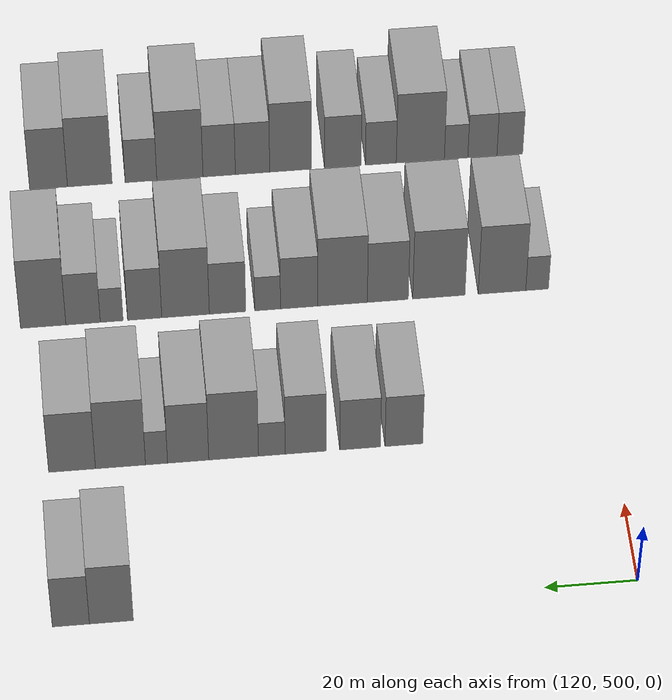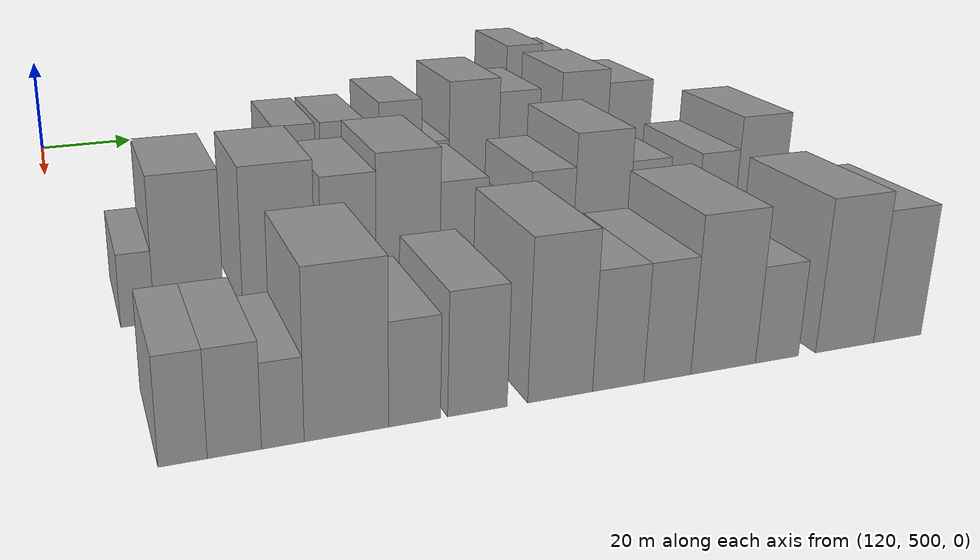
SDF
<sdf version="1.6">
 <world name="default">
  <model name="building_413">
   <static>1</static>
   <pose>130.0000 612.2391 0 0.000000 0.000000 0.000000</pose>
   <link name="link">
    <pose>0 0 10.50 0 0 0</pose>
    <collision name="collision"><geometry><box><size>20.0000 9.2866 21.0000</size></box></geometry></collision>
    <visual name="visual">
     <cast_shadows>0</cast_shadows>
     <geometry><box><size>20.0000 9.2866 21.0000</size></box></geometry>
     <material>
      <script>
       <uri>model://grey_wall/materials/scripts</uri>
       <uri>model://grey_wall/materials/textures</uri>
       <name>vrc/grey_wall</name>
      </script>
     </material>
    </visual>
   </link>
  </model>
  <model name="building_414">
   <static>1</static>
   <pose>130.0000 620.8093 0 0.000000 0.000000 0.000000</pose>
   <link name="link">
    <pose>0 0 9.00 0 0 0</pose>
    <collision name="collision"><geometry><box><size>20.0000 7.8538 18.0000</size></box></geometry></collision>
    <visual name="visual">
     <cast_shadows>0</cast_shadows>
     <geometry><box><size>20.0000 7.8538 18.0000</size></box></geometry>
     <material>
      <script>
       <uri>model://grey_wall/materials/scripts</uri>
       <uri>model://grey_wall/materials/textures</uri>
       <name>vrc/grey_wall</name>
      </script>
     </material>
    </visual>
   </link>
  </model>
  <model name="building_537">
   <static>1</static>
   <pose>170.0000 545.7697 0 0.000000 0.000000 0.000000</pose>
   <link name="link">
    <pose>0 0 9.00 0 0 0</pose>
    <collision name="collision"><geometry><box><size>20.0000 8.2819 18.0000</size></box></geometry></collision>
    <visual name="visual">
     <cast_shadows>0</cast_shadows>
     <geometry><box><size>20.0000 8.2819 18.0000</size></box></geometry>
     <material>
      <script>
       <uri>model://grey_wall/materials/scripts</uri>
       <uri>model://grey_wall/materials/textures</uri>
       <name>vrc/grey_wall</name>
      </script>
     </material>
    </visual>
   </link>
  </model>
  <model name="building_538">
   <static>1</static>
   <pose>170.0000 555.3766 0 0.000000 0.000000 0.000000</pose>
   <link name="link">
    <pose>0 0 9.00 0 0 0</pose>
    <collision name="collision"><geometry><box><size>20.0000 8.9319 18.0000</size></box></geometry></collision>
    <visual name="visual">
     <cast_shadows>0</cast_shadows>
     <geometry><box><size>20.0000 8.9319 18.0000</size></box></geometry>
     <material>
      <script>
       <uri>model://grey_wall/materials/scripts</uri>
       <uri>model://grey_wall/materials/textures</uri>
       <name>vrc/grey_wall</name>
      </script>
     </material>
    </visual>
   </link>
  </model>
  <model name="building_539">
   <static>1</static>
   <pose>170.0000 567.3300 0 0.000000 0.000000 0.000000</pose>
   <link name="link">
    <pose>0 0 10.50 0 0 0</pose>
    <collision name="collision"><geometry><box><size>20.0000 8.9748 21.0000</size></box></geometry></collision>
    <visual name="visual">
     <cast_shadows>0</cast_shadows>
     <geometry><box><size>20.0000 8.9748 21.0000</size></box></geometry>
     <material>
      <script>
       <uri>model://grey_wall/materials/scripts</uri>
       <uri>model://grey_wall/materials/textures</uri>
       <name>vrc/grey_wall</name>
      </script>
     </material>
    </visual>
   </link>
  </model>
  <model name="building_540">
   <static>1</static>
   <pose>170.0000 574.7303 0 0.000000 0.000000 0.000000</pose>
   <link name="link">
    <pose>0 0 6.00 0 0 0</pose>
    <collision name="collision"><geometry><box><size>20.0000 5.8257 12.0000</size></box></geometry></collision>
    <visual name="visual">
     <cast_shadows>0</cast_shadows>
     <geometry><box><size>20.0000 5.8257 12.0000</size></box></geometry>
     <material>
      <script>
       <uri>model://grey_wall/materials/scripts</uri>
       <uri>model://grey_wall/materials/textures</uri>
       <name>vrc/grey_wall</name>
      </script>
     </material>
    </visual>
   </link>
  </model>
  <model name="building_541">
   <static>1</static>
   <pose>170.0000 583.0833 0 0.000000 0.000000 0.000000</pose>
   <link name="link">
    <pose>0 0 12.00 0 0 0</pose>
    <collision name="collision"><geometry><box><size>20.0000 10.8804 24.0000</size></box></geometry></collision>
    <visual name="visual">
     <cast_shadows>0</cast_shadows>
     <geometry><box><size>20.0000 10.8804 24.0000</size></box></geometry>
     <material>
      <script>
       <uri>model://grey_wall/materials/scripts</uri>
       <uri>model://grey_wall/materials/textures</uri>
       <name>vrc/grey_wall</name>
      </script>
     </material>
    </visual>
   </link>
  </model>
  <model name="building_542">
   <static>1</static>
   <pose>170.0000 593.0234 0 0.000000 0.000000 0.000000</pose>
   <link name="link">
    <pose>0 0 10.50 0 0 0</pose>
    <collision name="collision"><geometry><box><size>20.0000 8.9997 21.0000</size></box></geometry></collision>
    <visual name="visual">
     <cast_shadows>0</cast_shadows>
     <geometry><box><size>20.0000 8.9997 21.0000</size></box></geometry>
     <material>
      <script>
       <uri>model://grey_wall/materials/scripts</uri>
       <uri>model://grey_wall/materials/textures</uri>
       <name>vrc/grey_wall</name>
      </script>
     </material>
    </visual>
   </link>
  </model>
  <model name="building_543">
   <static>1</static>
   <pose>170.0000 599.9318 0 0.000000 0.000000 0.000000</pose>
   <link name="link">
    <pose>0 0 6.00 0 0 0</pose>
    <collision name="collision"><geometry><box><size>20.0000 4.8172 12.0000</size></box></geometry></collision>
    <visual name="visual">
     <cast_shadows>0</cast_shadows>
     <geometry><box><size>20.0000 4.8172 12.0000</size></box></geometry>
     <material>
      <script>
       <uri>model://grey_wall/materials/scripts</uri>
       <uri>model://grey_wall/materials/textures</uri>
       <name>vrc/grey_wall</name>
      </script>
     </material>
    </visual>
   </link>
  </model>
  <model name="building_544">
   <static>1</static>
   <pose>170.0000 607.7904 0 0.000000 0.000000 0.000000</pose>
   <link name="link">
    <pose>0 0 12.00 0 0 0</pose>
    <collision name="collision"><geometry><box><size>20.0000 10.9000 24.0000</size></box></geometry></collision>
    <visual name="visual">
     <cast_shadows>0</cast_shadows>
     <geometry><box><size>20.0000 10.9000 24.0000</size></box></geometry>
     <material>
      <script>
       <uri>model://grey_wall/materials/scripts</uri>
       <uri>model://grey_wall/materials/textures</uri>
       <name>vrc/grey_wall</name>
      </script>
     </material>
    </visual>
   </link>
  </model>
  <model name="building_545">
   <static>1</static>
   <pose>170.0000 618.3335 0 0.000000 0.000000 0.000000</pose>
   <link name="link">
    <pose>0 0 10.50 0 0 0</pose>
    <collision name="collision"><geometry><box><size>20.0000 10.1862 21.0000</size></box></geometry></collision>
    <visual name="visual">
     <cast_shadows>0</cast_shadows>
     <geometry><box><size>20.0000 10.1862 21.0000</size></box></geometry>
     <material>
      <script>
       <uri>model://grey_wall/materials/scripts</uri>
       <uri>model://grey_wall/materials/textures</uri>
       <name>vrc/grey_wall</name>
      </script>
     </material>
    </visual>
   </link>
  </model>
  <model name="building_667">
   <static>1</static>
   <pose>210.0000 511.2175 0 0.000000 0.000000 0.000000</pose>
   <link name="link">
    <pose>0 0 6.00 0 0 0</pose>
    <collision name="collision"><geometry><box><size>20.0000 5.1535 12.0000</size></box></geometry></collision>
    <visual name="visual">
     <cast_shadows>0</cast_shadows>
     <geometry><box><size>20.0000 5.1535 12.0000</size></box></geometry>
     <material>
      <script>
       <uri>model://grey_wall/materials/scripts</uri>
       <uri>model://grey_wall/materials/textures</uri>
       <name>vrc/grey_wall</name>
      </script>
     </material>
    </visual>
   </link>
  </model>
  <model name="building_668">
   <static>1</static>
   <pose>210.0000 519.1886 0 0.000000 0.000000 0.000000</pose>
   <link name="link">
    <pose>0 0 12.00 0 0 0</pose>
    <collision name="collision"><geometry><box><size>20.0000 10.7886 24.0000</size></box></geometry></collision>
    <visual name="visual">
     <cast_shadows>0</cast_shadows>
     <geometry><box><size>20.0000 10.7886 24.0000</size></box></geometry>
     <material>
      <script>
       <uri>model://grey_wall/materials/scripts</uri>
       <uri>model://grey_wall/materials/textures</uri>
       <name>vrc/grey_wall</name>
      </script>
     </material>
    </visual>
   </link>
  </model>
  <model name="building_669">
   <static>1</static>
   <pose>210.0000 533.5049 0 0.000000 0.000000 0.000000</pose>
   <link name="link">
    <pose>0 0 12.00 0 0 0</pose>
    <collision name="collision"><geometry><box><size>20.0000 11.8440 24.0000</size></box></geometry></collision>
    <visual name="visual">
     <cast_shadows>0</cast_shadows>
     <geometry><box><size>20.0000 11.8440 24.0000</size></box></geometry>
     <material>
      <script>
       <uri>model://grey_wall/materials/scripts</uri>
       <uri>model://grey_wall/materials/textures</uri>
       <name>vrc/grey_wall</name>
      </script>
     </material>
    </visual>
   </link>
  </model>
  <model name="building_670">
   <static>1</static>
   <pose>210.0000 545.0594 0 0.000000 0.000000 0.000000</pose>
   <link name="link">
    <pose>0 0 10.50 0 0 0</pose>
    <collision name="collision"><geometry><box><size>20.0000 9.2650 21.0000</size></box></geometry></collision>
    <visual name="visual">
     <cast_shadows>0</cast_shadows>
     <geometry><box><size>20.0000 9.2650 21.0000</size></box></geometry>
     <material>
      <script>
       <uri>model://grey_wall/materials/scripts</uri>
       <uri>model://grey_wall/materials/textures</uri>
       <name>vrc/grey_wall</name>
      </script>
     </material>
    </visual>
   </link>
  </model>
  <model name="building_671">
   <static>1</static>
   <pose>210.0000 555.2672 0 0.000000 0.000000 0.000000</pose>
   <link name="link">
    <pose>0 0 12.00 0 0 0</pose>
    <collision name="collision"><geometry><box><size>20.0000 11.1507 24.0000</size></box></geometry></collision>
    <visual name="visual">
     <cast_shadows>0</cast_shadows>
     <geometry><box><size>20.0000 11.1507 24.0000</size></box></geometry>
     <material>
      <script>
       <uri>model://grey_wall/materials/scripts</uri>
       <uri>model://grey_wall/materials/textures</uri>
       <name>vrc/grey_wall</name>
      </script>
     </material>
    </visual>
   </link>
  </model>
  <model name="building_672">
   <static>1</static>
   <pose>210.0000 565.0670 0 0.000000 0.000000 0.000000</pose>
   <link name="link">
    <pose>0 0 9.00 0 0 0</pose>
    <collision name="collision"><geometry><box><size>20.0000 8.4488 18.0000</size></box></geometry></collision>
    <visual name="visual">
     <cast_shadows>0</cast_shadows>
     <geometry><box><size>20.0000 8.4488 18.0000</size></box></geometry>
     <material>
      <script>
       <uri>model://grey_wall/materials/scripts</uri>
       <uri>model://grey_wall/materials/textures</uri>
       <name>vrc/grey_wall</name>
      </script>
     </material>
    </visual>
   </link>
  </model>
  <model name="building_673">
   <static>1</static>
   <pose>210.0000 572.1894 0 0.000000 0.000000 0.000000</pose>
   <link name="link">
    <pose>0 0 6.00 0 0 0</pose>
    <collision name="collision"><geometry><box><size>20.0000 5.7960 12.0000</size></box></geometry></collision>
    <visual name="visual">
     <cast_shadows>0</cast_shadows>
     <geometry><box><size>20.0000 5.7960 12.0000</size></box></geometry>
     <material>
      <script>
       <uri>model://grey_wall/materials/scripts</uri>
       <uri>model://grey_wall/materials/textures</uri>
       <name>vrc/grey_wall</name>
      </script>
     </material>
    </visual>
   </link>
  </model>
  <model name="building_674">
   <static>1</static>
   <pose>210.0000 581.1921 0 0.000000 0.000000 0.000000</pose>
   <link name="link">
    <pose>0 0 9.00 0 0 0</pose>
    <collision name="collision"><geometry><box><size>20.0000 8.2096 18.0000</size></box></geometry></collision>
    <visual name="visual">
     <cast_shadows>0</cast_shadows>
     <geometry><box><size>20.0000 8.2096 18.0000</size></box></geometry>
     <material>
      <script>
       <uri>model://grey_wall/materials/scripts</uri>
       <uri>model://grey_wall/materials/textures</uri>
       <name>vrc/grey_wall</name>
      </script>
     </material>
    </visual>
   </link>
  </model>
  <model name="building_675">
   <static>1</static>
   <pose>210.0000 590.6491 0 0.000000 0.000000 0.000000</pose>
   <link name="link">
    <pose>0 0 12.00 0 0 0</pose>
    <collision name="collision"><geometry><box><size>20.0000 10.7043 24.0000</size></box></geometry></collision>
    <visual name="visual">
     <cast_shadows>0</cast_shadows>
     <geometry><box><size>20.0000 10.7043 24.0000</size></box></geometry>
     <material>
      <script>
       <uri>model://grey_wall/materials/scripts</uri>
       <uri>model://grey_wall/materials/textures</uri>
       <name>vrc/grey_wall</name>
      </script>
     </material>
    </visual>
   </link>
  </model>
  <model name="building_676">
   <static>1</static>
   <pose>210.0000 599.8379 0 0.000000 0.000000 0.000000</pose>
   <link name="link">
    <pose>0 0 9.00 0 0 0</pose>
    <collision name="collision"><geometry><box><size>20.0000 7.6733 18.0000</size></box></geometry></collision>
    <visual name="visual">
     <cast_shadows>0</cast_shadows>
     <geometry><box><size>20.0000 7.6733 18.0000</size></box></geometry>
     <material>
      <script>
       <uri>model://grey_wall/materials/scripts</uri>
       <uri>model://grey_wall/materials/textures</uri>
       <name>vrc/grey_wall</name>
      </script>
     </material>
    </visual>
   </link>
  </model>
  <model name="building_677">
   <static>1</static>
   <pose>210.0000 607.2343 0 0.000000 0.000000 0.000000</pose>
   <link name="link">
    <pose>0 0 6.00 0 0 0</pose>
    <collision name="collision"><geometry><box><size>20.0000 5.1196 12.0000</size></box></geometry></collision>
    <visual name="visual">
     <cast_shadows>0</cast_shadows>
     <geometry><box><size>20.0000 5.1196 12.0000</size></box></geometry>
     <material>
      <script>
       <uri>model://grey_wall/materials/scripts</uri>
       <uri>model://grey_wall/materials/textures</uri>
       <name>vrc/grey_wall</name>
      </script>
     </material>
    </visual>
   </link>
  </model>
  <model name="building_678">
   <static>1</static>
   <pose>210.0000 613.6526 0 0.000000 0.000000 0.000000</pose>
   <link name="link">
    <pose>0 0 9.00 0 0 0</pose>
    <collision name="collision"><geometry><box><size>20.0000 7.7169 18.0000</size></box></geometry></collision>
    <visual name="visual">
     <cast_shadows>0</cast_shadows>
     <geometry><box><size>20.0000 7.7169 18.0000</size></box></geometry>
     <material>
      <script>
       <uri>model://grey_wall/materials/scripts</uri>
       <uri>model://grey_wall/materials/textures</uri>
       <name>vrc/grey_wall</name>
      </script>
     </material>
    </visual>
   </link>
  </model>
  <model name="building_679">
   <static>1</static>
   <pose>210.0000 622.5830 0 0.000000 0.000000 0.000000</pose>
   <link name="link">
    <pose>0 0 12.00 0 0 0</pose>
    <collision name="collision"><geometry><box><size>20.0000 10.1439 24.0000</size></box></geometry></collision>
    <visual name="visual">
     <cast_shadows>0</cast_shadows>
     <geometry><box><size>20.0000 10.1439 24.0000</size></box></geometry>
     <material>
      <script>
       <uri>model://grey_wall/materials/scripts</uri>
       <uri>model://grey_wall/materials/textures</uri>
       <name>vrc/grey_wall</name>
      </script>
     </material>
    </visual>
   </link>
  </model>
  <model name="building_806">
   <static>1</static>
   <pose>250.0000 512.3992 0 0.000000 0.000000 0.000000</pose>
   <link name="link">
    <pose>0 0 7.50 0 0 0</pose>
    <collision name="collision"><geometry><box><size>20.0000 6.0033 15.0000</size></box></geometry></collision>
    <visual name="visual">
     <cast_shadows>0</cast_shadows>
     <geometry><box><size>20.0000 6.0033 15.0000</size></box></geometry>
     <material>
      <script>
       <uri>model://grey_wall/materials/scripts</uri>
       <uri>model://grey_wall/materials/textures</uri>
       <name>vrc/grey_wall</name>
      </script>
     </material>
    </visual>
   </link>
  </model>
  <model name="building_807">
   <static>1</static>
   <pose>250.0000 518.7939 0 0.000000 0.000000 0.000000</pose>
   <link name="link">
    <pose>0 0 7.50 0 0 0</pose>
    <collision name="collision"><geometry><box><size>20.0000 6.7862 15.0000</size></box></geometry></collision>
    <visual name="visual">
     <cast_shadows>0</cast_shadows>
     <geometry><box><size>20.0000 6.7862 15.0000</size></box></geometry>
     <material>
      <script>
       <uri>model://grey_wall/materials/scripts</uri>
       <uri>model://grey_wall/materials/textures</uri>
       <name>vrc/grey_wall</name>
      </script>
     </material>
    </visual>
   </link>
  </model>
  <model name="building_808">
   <static>1</static>
   <pose>250.0000 524.9253 0 0.000000 0.000000 0.000000</pose>
   <link name="link">
    <pose>0 0 6.00 0 0 0</pose>
    <collision name="collision"><geometry><box><size>20.0000 5.4765 12.0000</size></box></geometry></collision>
    <visual name="visual">
     <cast_shadows>0</cast_shadows>
     <geometry><box><size>20.0000 5.4765 12.0000</size></box></geometry>
     <material>
      <script>
       <uri>model://grey_wall/materials/scripts</uri>
       <uri>model://grey_wall/materials/textures</uri>
       <name>vrc/grey_wall</name>
      </script>
     </material>
    </visual>
   </link>
  </model>
  <model name="building_809">
   <static>1</static>
   <pose>250.0000 533.2593 0 0.000000 0.000000 0.000000</pose>
   <link name="link">
    <pose>0 0 12.00 0 0 0</pose>
    <collision name="collision"><geometry><box><size>20.0000 11.1915 24.0000</size></box></geometry></collision>
    <visual name="visual">
     <cast_shadows>0</cast_shadows>
     <geometry><box><size>20.0000 11.1915 24.0000</size></box></geometry>
     <material>
      <script>
       <uri>model://grey_wall/materials/scripts</uri>
       <uri>model://grey_wall/materials/textures</uri>
       <name>vrc/grey_wall</name>
      </script>
     </material>
    </visual>
   </link>
  </model>
  <model name="building_810">
   <static>1</static>
   <pose>250.0000 542.4409 0 0.000000 0.000000 0.000000</pose>
   <link name="link">
    <pose>0 0 7.50 0 0 0</pose>
    <collision name="collision"><geometry><box><size>20.0000 7.1717 15.0000</size></box></geometry></collision>
    <visual name="visual">
     <cast_shadows>0</cast_shadows>
     <geometry><box><size>20.0000 7.1717 15.0000</size></box></geometry>
     <material>
      <script>
       <uri>model://grey_wall/materials/scripts</uri>
       <uri>model://grey_wall/materials/textures</uri>
       <name>vrc/grey_wall</name>
      </script>
     </material>
    </visual>
   </link>
  </model>
  <model name="building_811">
   <static>1</static>
   <pose>250.0000 551.2822 0 0.000000 0.000000 0.000000</pose>
   <link name="link">
    <pose>0 0 9.00 0 0 0</pose>
    <collision name="collision"><geometry><box><size>20.0000 8.5109 18.0000</size></box></geometry></collision>
    <visual name="visual">
     <cast_shadows>0</cast_shadows>
     <geometry><box><size>20.0000 8.5109 18.0000</size></box></geometry>
     <material>
      <script>
       <uri>model://grey_wall/materials/scripts</uri>
       <uri>model://grey_wall/materials/textures</uri>
       <name>vrc/grey_wall</name>
      </script>
     </material>
    </visual>
   </link>
  </model>
  <model name="building_812">
   <static>1</static>
   <pose>250.0000 563.3890 0 0.000000 0.000000 0.000000</pose>
   <link name="link">
    <pose>0 0 12.00 0 0 0</pose>
    <collision name="collision"><geometry><box><size>20.0000 9.7028 24.0000</size></box></geometry></collision>
    <visual name="visual">
     <cast_shadows>0</cast_shadows>
     <geometry><box><size>20.0000 9.7028 24.0000</size></box></geometry>
     <material>
      <script>
       <uri>model://grey_wall/materials/scripts</uri>
       <uri>model://grey_wall/materials/textures</uri>
       <name>vrc/grey_wall</name>
      </script>
     </material>
    </visual>
   </link>
  </model>
  <model name="building_813">
   <static>1</static>
   <pose>250.0000 572.2111 0 0.000000 0.000000 0.000000</pose>
   <link name="link">
    <pose>0 0 9.00 0 0 0</pose>
    <collision name="collision"><geometry><box><size>20.0000 7.9414 18.0000</size></box></geometry></collision>
    <visual name="visual">
     <cast_shadows>0</cast_shadows>
     <geometry><box><size>20.0000 7.9414 18.0000</size></box></geometry>
     <material>
      <script>
       <uri>model://grey_wall/materials/scripts</uri>
       <uri>model://grey_wall/materials/textures</uri>
       <name>vrc/grey_wall</name>
      </script>
     </material>
    </visual>
   </link>
  </model>
  <model name="building_814">
   <static>1</static>
   <pose>250.0000 579.9269 0 0.000000 0.000000 0.000000</pose>
   <link name="link">
    <pose>0 0 9.00 0 0 0</pose>
    <collision name="collision"><geometry><box><size>20.0000 7.4901 18.0000</size></box></geometry></collision>
    <visual name="visual">
     <cast_shadows>0</cast_shadows>
     <geometry><box><size>20.0000 7.4901 18.0000</size></box></geometry>
     <material>
      <script>
       <uri>model://grey_wall/materials/scripts</uri>
       <uri>model://grey_wall/materials/textures</uri>
       <name>vrc/grey_wall</name>
      </script>
     </material>
    </visual>
   </link>
  </model>
  <model name="building_815">
   <static>1</static>
   <pose>250.0000 589.0101 0 0.000000 0.000000 0.000000</pose>
   <link name="link">
    <pose>0 0 12.00 0 0 0</pose>
    <collision name="collision"><geometry><box><size>20.0000 10.6763 24.0000</size></box></geometry></collision>
    <visual name="visual">
     <cast_shadows>0</cast_shadows>
     <geometry><box><size>20.0000 10.6763 24.0000</size></box></geometry>
     <material>
      <script>
       <uri>model://grey_wall/materials/scripts</uri>
       <uri>model://grey_wall/materials/textures</uri>
       <name>vrc/grey_wall</name>
      </script>
     </material>
    </visual>
   </link>
  </model>
  <model name="building_816">
   <static>1</static>
   <pose>250.0000 598.0054 0 0.000000 0.000000 0.000000</pose>
   <link name="link">
    <pose>0 0 7.50 0 0 0</pose>
    <collision name="collision"><geometry><box><size>20.0000 7.3143 15.0000</size></box></geometry></collision>
    <visual name="visual">
     <cast_shadows>0</cast_shadows>
     <geometry><box><size>20.0000 7.3143 15.0000</size></box></geometry>
     <material>
      <script>
       <uri>model://grey_wall/materials/scripts</uri>
       <uri>model://grey_wall/materials/textures</uri>
       <name>vrc/grey_wall</name>
      </script>
     </material>
    </visual>
   </link>
  </model>
  <model name="building_817">
   <static>1</static>
   <pose>250.0000 609.8096 0 0.000000 0.000000 0.000000</pose>
   <link name="link">
    <pose>0 0 12.00 0 0 0</pose>
    <collision name="collision"><geometry><box><size>20.0000 10.2941 24.0000</size></box></geometry></collision>
    <visual name="visual">
     <cast_shadows>0</cast_shadows>
     <geometry><box><size>20.0000 10.2941 24.0000</size></box></geometry>
     <material>
      <script>
       <uri>model://grey_wall/materials/scripts</uri>
       <uri>model://grey_wall/materials/textures</uri>
       <name>vrc/grey_wall</name>
      </script>
     </material>
    </visual>
   </link>
  </model>
  <model name="building_818">
   <static>1</static>
   <pose>250.0000 619.3108 0 0.000000 0.000000 0.000000</pose>
   <link name="link">
    <pose>0 0 10.50 0 0 0</pose>
    <collision name="collision"><geometry><box><size>20.0000 8.7084 21.0000</size></box></geometry></collision>
    <visual name="visual">
     <cast_shadows>0</cast_shadows>
     <geometry><box><size>20.0000 8.7084 21.0000</size></box></geometry>
     <material>
      <script>
       <uri>model://grey_wall/materials/scripts</uri>
       <uri>model://grey_wall/materials/textures</uri>
       <name>vrc/grey_wall</name>
      </script>
     </material>
    </visual>
   </link>
  </model>
 </world>
</sdf>
